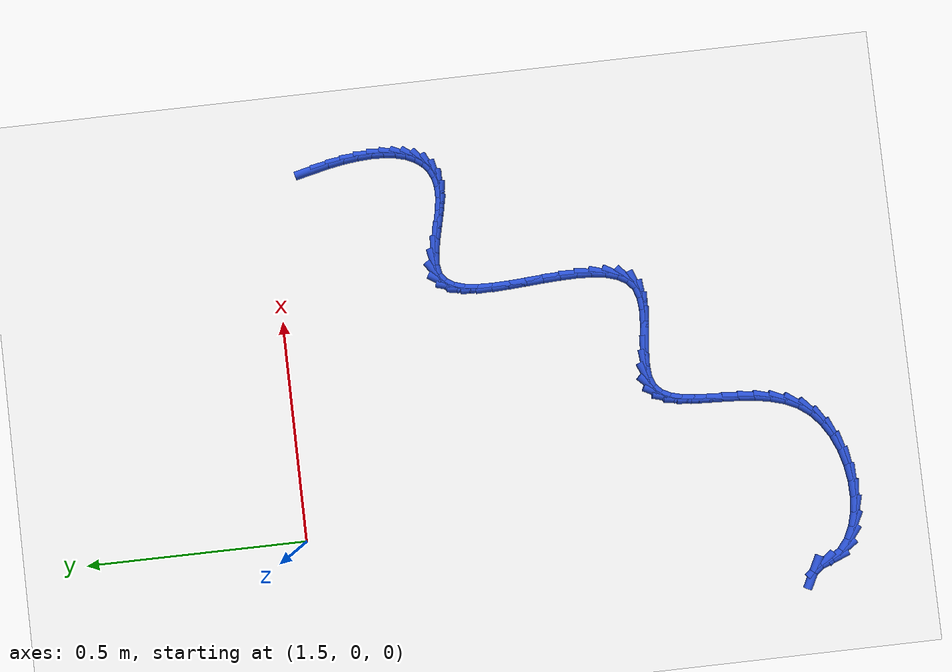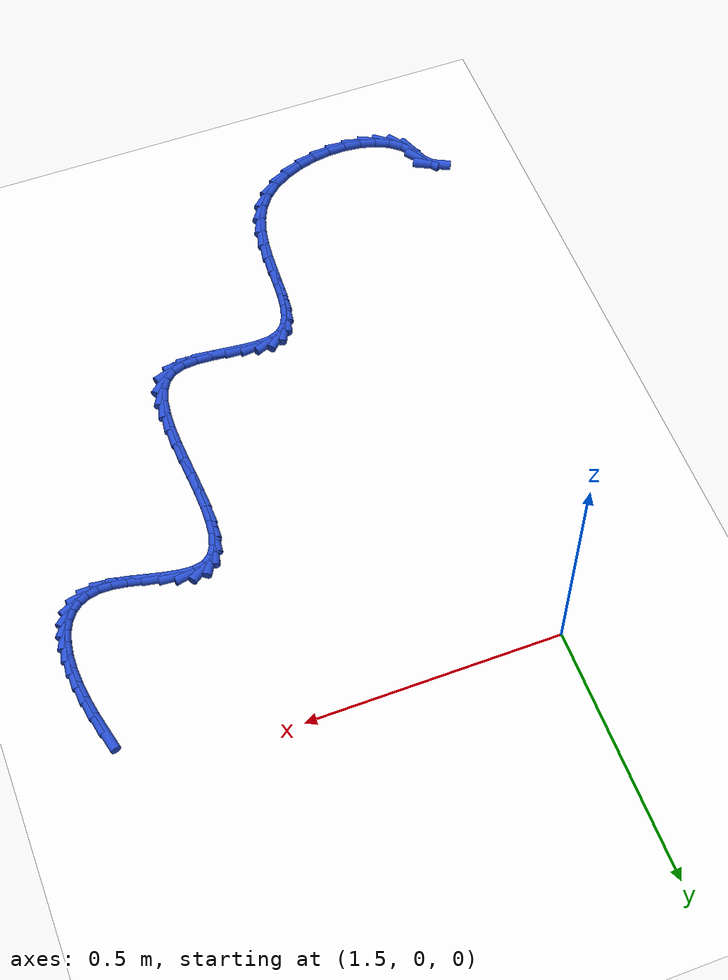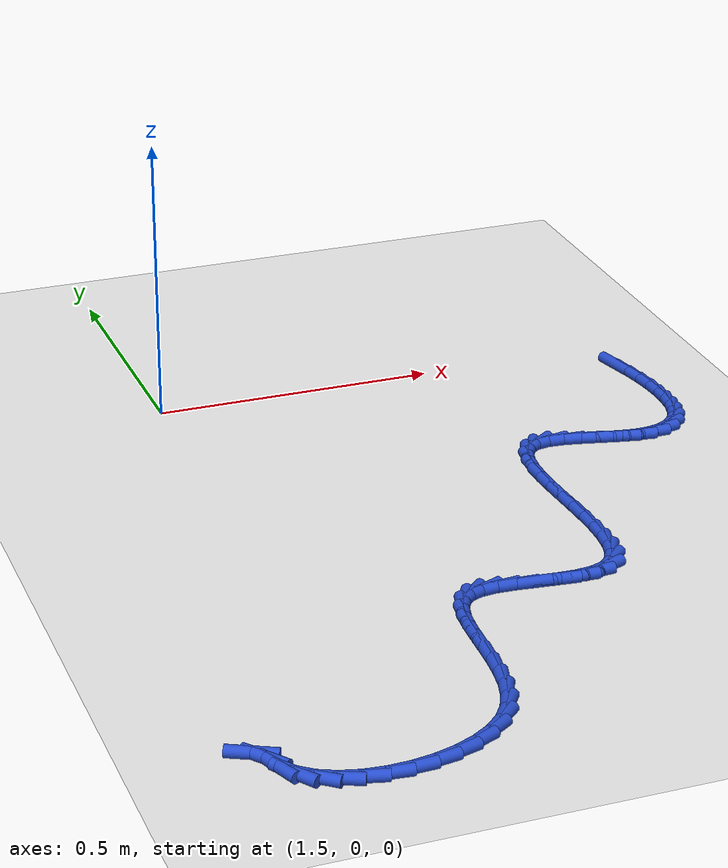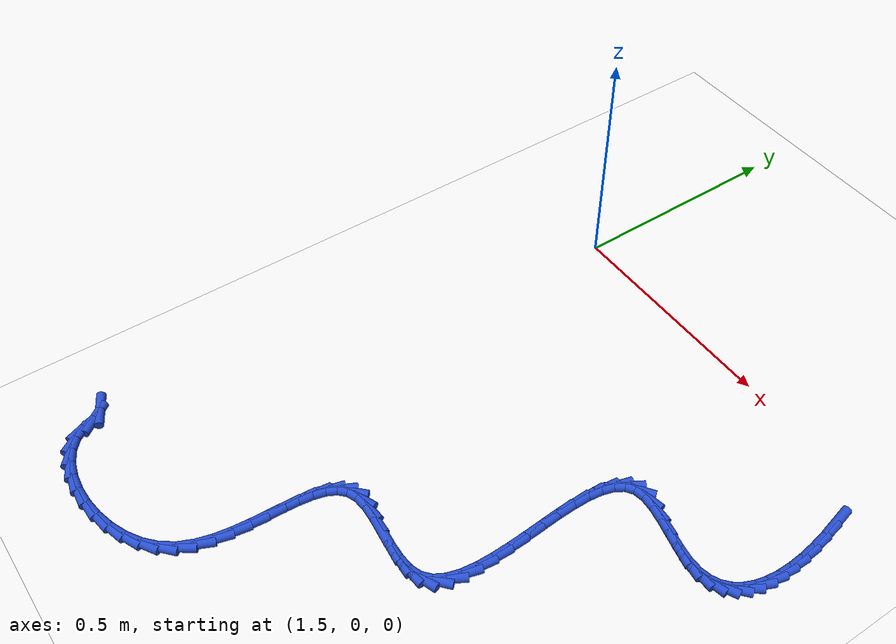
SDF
<sdf version="1.6">
 <world name="default">
  <model name="ground_plane">
   <static>1</static>
   <link name="link">
    <collision name="collision">
     <geometry><plane><normal>0 0 1</normal><size>100 100</size></plane></geometry>
     <surface><friction><ode><mu>100</mu><mu2>50</mu2></ode></friction></surface>
    </collision>
    <visual name="visual">
     <cast_shadows>0</cast_shadows>
     <geometry><plane><normal>0 0 1</normal><size>100 100</size></plane></geometry>
     <material>
      <script><uri>file://media/materials/scripts/gazebo.material</uri><name>Gazebo/WhiteGlow</name></script>
     </material>
    </visual>
   </link>
  </model>
  <model name="line">
   <link name="link_131">
    <pose>2.3375951567566684 -0.1026733432982544 0.01 0 1.57 -1.3455526820320813</pose>
    <collision name="collision">
     <geometry><cylinder><radius>0.01</radius><length>0.08</length></cylinder></geometry>
    </collision>
    <visual name="visual">
     <material>
      <script><name>Gazebo/Blue</name><uri>file://media/materials/scripts/gazebo.material</uri></script>
     </material>
     <geometry><cylinder><radius>0.01</radius><length>0.08</length></cylinder></geometry>
    </visual>
   </link>
   <link name="link_132">
    <pose>2.3460475133399448 -0.1395619675119663 0.01 0 1.57 -1.3940162141005086</pose>
    <collision name="collision">
     <geometry><cylinder><radius>0.01</radius><length>0.08</length></cylinder></geometry>
    </collision>
    <visual name="visual">
     <material>
      <script><name>Gazebo/Blue</name><uri>file://media/materials/scripts/gazebo.material</uri></script>
     </material>
     <geometry><cylinder><radius>0.01</radius><length>0.08</length></cylinder></geometry>
    </visual>
   </link>
   <link name="link_133">
    <pose>2.3523832394621547 -0.17502743029856901 0.01 0 1.57 -1.4505257538932241</pose>
    <collision name="collision">
     <geometry><cylinder><radius>0.01</radius><length>0.08</length></cylinder></geometry>
    </collision>
    <visual name="visual">
     <material>
      <script><name>Gazebo/Blue</name><uri>file://media/materials/scripts/gazebo.material</uri></script>
     </material>
     <geometry><cylinder><radius>0.01</radius><length>0.08</length></cylinder></geometry>
    </visual>
   </link>
   <link name="link_134">
    <pose>2.356461099488628 -0.2087695073941012 0.01 0 1.57 -1.5179188224334936</pose>
    <collision name="collision">
     <geometry><cylinder><radius>0.01</radius><length>0.08</length></cylinder></geometry>
    </collision>
    <visual name="visual">
     <material>
      <script><name>Gazebo/Blue</name><uri>file://media/materials/scripts/gazebo.material</uri></script>
     </material>
     <geometry><cylinder><radius>0.01</radius><length>0.08</length></cylinder></geometry>
    </visual>
   </link>
   <link name="link_135">
    <pose>2.358139857784694 -0.24048797453460297 0.01 0 1.57 1.541493955000063</pose>
    <collision name="collision">
     <geometry><cylinder><radius>0.01</radius><length>0.08</length></cylinder></geometry>
    </collision>
    <visual name="visual">
     <material>
      <script><name>Gazebo/Blue</name><uri>file://media/materials/scripts/gazebo.material</uri></script>
     </material>
     <geometry><cylinder><radius>0.01</radius><length>0.08</length></cylinder></geometry>
    </visual>
   </link>
   <link name="link_136">
    <pose>2.3572782787156825 -0.2698826074561134 0.01 0 1.57 1.4392086330382112</pose>
    <collision name="collision">
     <geometry><cylinder><radius>0.01</radius><length>0.08</length></cylinder></geometry>
    </collision>
    <visual name="visual">
     <material>
      <script><name>Gazebo/Blue</name><uri>file://media/materials/scripts/gazebo.material</uri></script>
     </material>
     <geometry><cylinder><radius>0.01</radius><length>0.08</length></cylinder></geometry>
    </visual>
   </link>
   <link name="link_137">
    <pose>2.353735126646923 -0.2966531818946703 0.01 0 1.57 1.3099218704706403</pose>
    <collision name="collision">
     <geometry><cylinder><radius>0.01</radius><length>0.08</length></cylinder></geometry>
    </collision>
    <visual name="visual">
     <material>
      <script><name>Gazebo/Blue</name><uri>file://media/materials/scripts/gazebo.material</uri></script>
     </material>
     <geometry><cylinder><radius>0.01</radius><length>0.08</length></cylinder></geometry>
    </visual>
   </link>
   <link name="link_138">
    <pose>2.347369165943745 -0.3204994735863144 0.01 0 1.57 1.1459197891736546</pose>
    <collision name="collision">
     <geometry><cylinder><radius>0.01</radius><length>0.08</length></cylinder></geometry>
    </collision>
    <visual name="visual">
     <material>
      <script><name>Gazebo/Blue</name><uri>file://media/materials/scripts/gazebo.material</uri></script>
     </material>
     <geometry><cylinder><radius>0.01</radius><length>0.08</length></cylinder></geometry>
    </visual>
   </link>
   <link name="link_139">
    <pose>2.3380391609714772 -0.3411212582670833 0.01 0 1.57 0.9419593295665475</pose>
    <collision name="collision">
     <geometry><cylinder><radius>0.01</radius><length>0.08</length></cylinder></geometry>
    </collision>
    <visual name="visual">
     <material>
      <script><name>Gazebo/Blue</name><uri>file://media/materials/scripts/gazebo.material</uri></script>
     </material>
     <geometry><cylinder><radius>0.01</radius><length>0.08</length></cylinder></geometry>
    </visual>
   </link>
   <link name="link_140">
    <pose>2.3256038760954505 -0.358218311673017 0.01 0 1.57 0.7023640260336117</pose>
    <collision name="collision">
     <geometry><cylinder><radius>0.01</radius><length>0.08</length></cylinder></geometry>
    </collision>
    <visual name="visual">
     <material>
      <script><name>Gazebo/Blue</name><uri>file://media/materials/scripts/gazebo.material</uri></script>
     </material>
     <geometry><cylinder><radius>0.01</radius><length>0.08</length></cylinder></geometry>
    </visual>
   </link>
   <link name="link_141">
    <pose>2.3099220756809924 -0.371490409540155 0.01 0 1.57 0.4472443282020915</pose>
    <collision name="collision">
     <geometry><cylinder><radius>0.01</radius><length>0.08</length></cylinder></geometry>
    </collision>
    <visual name="visual">
     <material>
      <script><name>Gazebo/Blue</name><uri>file://media/materials/scripts/gazebo.material</uri></script>
     </material>
     <geometry><cylinder><radius>0.01</radius><length>0.08</length></cylinder></geometry>
    </visual>
   </link>
   <link name="link_142">
    <pose>2.2908525240934337 -0.38063732760453545 0.01 0 1.57 0.20596722604905607</pose>
    <collision name="collision">
     <geometry><cylinder><radius>0.01</radius><length>0.08</length></cylinder></geometry>
    </collision>
    <visual name="visual">
     <material>
      <script><name>Gazebo/Blue</name><uri>file://media/materials/scripts/gazebo.material</uri></script>
     </material>
     <geometry><cylinder><radius>0.01</radius><length>0.08</length></cylinder></geometry>
    </visual>
   </link>
   <link name="link_143">
    <pose>2.2682539856981023 -0.3853588416021981 0.01 0 1.57 -0.00015481921336579784</pose>
    <collision name="collision">
     <geometry><cylinder><radius>0.01</radius><length>0.08</length></cylinder></geometry>
    </collision>
    <visual name="visual">
     <material>
      <script><name>Gazebo/Blue</name><uri>file://media/materials/scripts/gazebo.material</uri></script>
     </material>
     <geometry><cylinder><radius>0.01</radius><length>0.08</length></cylinder></geometry>
    </visual>
   </link>
   <link name="link_144">
    <pose>2.2419852592645513 -0.385354774698603 0.01 0 1.57 -0.15167326856820715</pose>
    <collision name="collision">
     <geometry><cylinder><radius>0.01</radius><length>0.08</length></cylinder></geometry>
    </collision>
    <visual name="visual">
     <material>
      <script><name>Gazebo/Blue</name><uri>file://media/materials/scripts/gazebo.material</uri></script>
     </material>
     <geometry><cylinder><radius>0.01</radius><length>0.08</length></cylinder></geometry>
    </visual>
   </link>
   <link name="link_145">
    <pose>2.2122577165739554 -0.3808110047683187 0.01 0 1.57 -0.22341381243508324</pose>
    <collision name="collision">
     <geometry><cylinder><radius>0.01</radius><length>0.08</length></cylinder></geometry>
    </collision>
    <visual name="visual">
     <material>
      <script><name>Gazebo/Blue</name><uri>file://media/materials/scripts/gazebo.material</uri></script>
     </material>
     <geometry><cylinder><radius>0.01</radius><length>0.08</length></cylinder></geometry>
    </visual>
   </link>
   <link name="link_146">
    <pose>2.1805033945334347 -0.37359621016452826 0.01 0 1.57 -0.23415329597388687</pose>
    <collision name="collision">
     <geometry><cylinder><radius>0.01</radius><length>0.08</length></cylinder></geometry>
    </collision>
    <visual name="visual">
     <material>
      <script><name>Gazebo/Blue</name><uri>file://media/materials/scripts/gazebo.material</uri></script>
     </material>
     <geometry><cylinder><radius>0.01</radius><length>0.08</length></cylinder></geometry>
    </visual>
   </link>
   <link name="link_147">
    <pose>2.148418317251118 -0.36594300016525844 0.01 0 1.57 -0.18846098521706348</pose>
    <collision name="collision">
     <geometry><cylinder><radius>0.01</radius><length>0.08</length></cylinder></geometry>
    </collision>
    <visual name="visual">
     <material>
      <script><name>Gazebo/Blue</name><uri>file://media/materials/scripts/gazebo.material</uri></script>
     </material>
     <geometry><cylinder><radius>0.01</radius><length>0.08</length></cylinder></geometry>
    </visual>
   </link>
   <link name="link_148">
    <pose>2.1176985088351383 -0.36008398404853603 0.01 0 1.57 -0.06614743686200249</pose>
    <collision name="collision">
     <geometry><cylinder><radius>0.01</radius><length>0.08</length></cylinder></geometry>
    </collision>
    <visual name="visual">
     <material>
      <script><name>Gazebo/Blue</name><uri>file://media/materials/scripts/gazebo.material</uri></script>
     </material>
     <geometry><cylinder><radius>0.01</radius><length>0.08</length></cylinder></geometry>
    </visual>
   </link>
   <link name="link_149">
    <pose>2.0900399933936233 -0.3582517710923874 0.01 0 1.57 0.19087646037112407</pose>
    <collision name="collision">
     <geometry><cylinder><radius>0.01</radius><length>0.08</length></cylinder></geometry>
    </collision>
    <visual name="visual">
     <material>
      <script><name>Gazebo/Blue</name><uri>file://media/materials/scripts/gazebo.material</uri></script>
     </material>
     <geometry><cylinder><radius>0.01</radius><length>0.08</length></cylinder></geometry>
    </visual>
   </link>
   <link name="link_150">
    <pose>2.0671374364139994 -0.36267720627375744 0.01 0 1.57 0.6162295050546202</pose>
    <collision name="collision">
     <geometry><cylinder><radius>0.01</radius><length>0.08</length></cylinder></geometry>
    </collision>
    <visual name="visual">
     <material>
      <script><name>Gazebo/Blue</name><uri>file://media/materials/scripts/gazebo.material</uri></script>
     </material>
     <geometry><cylinder><radius>0.01</radius><length>0.08</length></cylinder></geometry>
    </visual>
   </link>
   <link name="link_151">
    <pose>2.0500565801029125 -0.37477441654053023 0.01 0 1.57 1.015972883739013</pose>
    <collision name="collision">
     <geometry><cylinder><radius>0.01</radius><length>0.08</length></cylinder></geometry>
    </collision>
    <visual name="visual">
     <material>
      <script><name>Gazebo/Blue</name><uri>file://media/materials/scripts/gazebo.material</uri></script>
     </material>
     <geometry><cylinder><radius>0.01</radius><length>0.08</length></cylinder></geometry>
    </visual>
   </link>
   <link name="link_152">
    <pose>2.0382369305959958 -0.3938457031866605 0.01 0 1.57 1.283929796952998</pose>
    <collision name="collision">
     <geometry><cylinder><radius>0.01</radius><length>0.08</length></cylinder></geometry>
    </collision>
    <visual name="visual">
     <material>
      <script><name>Gazebo/Blue</name><uri>file://media/materials/scripts/gazebo.material</uri></script>
     </material>
     <geometry><cylinder><radius>0.01</radius><length>0.08</length></cylinder></geometry>
    </visual>
   </link>
   <link name="link_153">
    <pose>2.030858638627514 -0.418856569300807 0.01 0 1.57 1.4458723080909175</pose>
    <collision name="collision">
     <geometry><cylinder><radius>0.01</radius><length>0.08</length></cylinder></geometry>
    </collision>
    <visual name="visual">
     <material>
      <script><name>Gazebo/Blue</name><uri>file://media/materials/scripts/gazebo.material</uri></script>
     </material>
     <geometry><cylinder><radius>0.01</radius><length>0.08</length></cylinder></geometry>
    </visual>
   </link>
   <link name="link_154">
    <pose>2.0271018549317303 -0.44877251797163126 0.01 0 1.57 1.5425344645436385</pose>
    <collision name="collision">
     <geometry><cylinder><radius>0.01</radius><length>0.08</length></cylinder></geometry>
    </collision>
    <visual name="visual">
     <material>
      <script><name>Gazebo/Blue</name><uri>file://media/materials/scripts/gazebo.material</uri></script>
     </material>
     <geometry><cylinder><radius>0.01</radius><length>0.08</length></cylinder></geometry>
    </visual>
   </link>
   <link name="link_155">
    <pose>2.026146730242907 -0.4825590522877909 0.01 0 1.57 -1.5427694917056824</pose>
    <collision name="collision">
     <geometry><cylinder><radius>0.01</radius><length>0.08</length></cylinder></geometry>
    </collision>
    <visual name="visual">
     <material>
      <script><name>Gazebo/Blue</name><uri>file://media/materials/scripts/gazebo.material</uri></script>
     </material>
     <geometry><cylinder><radius>0.01</radius><length>0.08</length></cylinder></geometry>
    </visual>
   </link>
   <link name="link_156">
    <pose>2.0271734152953087 -0.5191816753379485 0.01 0 1.57 -1.513897749951895</pose>
    <collision name="collision">
     <geometry><cylinder><radius>0.01</radius><length>0.08</length></cylinder></geometry>
    </collision>
    <visual name="visual">
     <material>
      <script><name>Gazebo/Blue</name><uri>file://media/materials/scripts/gazebo.material</uri></script>
     </material>
     <geometry><cylinder><radius>0.01</radius><length>0.08</length></cylinder></geometry>
    </visual>
   </link>
   <link name="link_157">
    <pose>2.0293620608231984 -0.5576058902107612 0.01 0 1.57 -1.5063114219953675</pose>
    <collision name="collision">
     <geometry><cylinder><radius>0.01</radius><length>0.08</length></cylinder></geometry>
    </collision>
    <visual name="visual">
     <material>
      <script><name>Gazebo/Blue</name><uri>file://media/materials/scripts/gazebo.material</uri></script>
     </material>
     <geometry><cylinder><radius>0.01</radius><length>0.08</length></cylinder></geometry>
    </visual>
   </link>
   <link name="link_158">
    <pose>2.0318928175608386 -0.5967971999948912 0.01 0 1.57 -1.518100743137935</pose>
    <collision name="collision">
     <geometry><cylinder><radius>0.01</radius><length>0.08</length></cylinder></geometry>
    </collision>
    <visual name="visual">
     <material>
      <script><name>Gazebo/Blue</name><uri>file://media/materials/scripts/gazebo.material</uri></script>
     </material>
     <geometry><cylinder><radius>0.01</radius><length>0.08</length></cylinder></geometry>
    </visual>
   </link>
   <link name="link_159">
    <pose>2.033945836242493 -0.6357211077789963 0.01 0 1.57 -1.5507195185508766</pose>
    <collision name="collision">
     <geometry><cylinder><radius>0.01</radius><length>0.08</length></cylinder></geometry>
    </collision>
    <visual name="visual">
     <material>
      <script><name>Gazebo/Blue</name><uri>file://media/materials/scripts/gazebo.material</uri></script>
     </material>
     <geometry><cylinder><radius>0.01</radius><length>0.08</length></cylinder></geometry>
    </visual>
   </link>
   <link name="link_160">
    <pose>2.034701267602425 -0.6733431166517374 0.01 0 1.57 1.5322160304992645</pose>
    <collision name="collision">
     <geometry><cylinder><radius>0.01</radius><length>0.08</length></cylinder></geometry>
    </collision>
    <visual name="visual">
     <material>
      <script><name>Gazebo/Blue</name><uri>file://media/materials/scripts/gazebo.material</uri></script>
     </material>
     <geometry><cylinder><radius>0.01</radius><length>0.08</length></cylinder></geometry>
    </visual>
   </link>
   <link name="link_161">
    <pose>2.033339262374899 -0.7086287297017755 0.01 0 1.57 1.4368906001173172</pose>
    <collision name="collision">
     <geometry><cylinder><radius>0.01</radius><length>0.08</length></cylinder></geometry>
    </collision>
    <visual name="visual">
     <material>
      <script><name>Gazebo/Blue</name><uri>file://media/materials/scripts/gazebo.material</uri></script>
     </material>
     <geometry><cylinder><radius>0.01</radius><length>0.08</length></cylinder></geometry>
    </visual>
   </link>
   <link name="link_162">
    <pose>2.0290399712941767 -0.7405434500177683 0.01 0 1.57 1.2859013343175598</pose>
    <collision name="collision">
     <geometry><cylinder><radius>0.01</radius><length>0.08</length></cylinder></geometry>
    </collision>
    <visual name="visual">
     <material>
      <script><name>Gazebo/Blue</name><uri>file://media/materials/scripts/gazebo.material</uri></script>
     </material>
     <geometry><cylinder><radius>0.01</radius><length>0.08</length></cylinder></geometry>
    </visual>
   </link>
   <link name="link_163">
    <pose>2.0209835450945226 -0.7680527806883779 0.01 0 1.57 1.050888834175305</pose>
    <collision name="collision">
     <geometry><cylinder><radius>0.01</radius><length>0.08</length></cylinder></geometry>
    </collision>
    <visual name="visual">
     <material>
      <script><name>Gazebo/Blue</name><uri>file://media/materials/scripts/gazebo.material</uri></script>
     </material>
     <geometry><cylinder><radius>0.01</radius><length>0.08</length></cylinder></geometry>
    </visual>
   </link>
   <link name="link_164">
    <pose>2.008350134510199 -0.7901222248022619 0.01 0 1.57 0.7131032184170614</pose>
    <collision name="collision">
     <geometry><cylinder><radius>0.01</radius><length>0.08</length></cylinder></geometry>
    </collision>
    <visual name="visual">
     <material>
      <script><name>Gazebo/Blue</name><uri>file://media/materials/scripts/gazebo.material</uri></script>
     </material>
     <geometry><cylinder><radius>0.01</radius><length>0.08</length></cylinder></geometry>
    </visual>
   </link>
   <link name="link_165">
    <pose>1.99031989027547 -0.8057172854480821 0.01 0 1.57 0.3358237771870635</pose>
    <collision name="collision">
     <geometry><cylinder><radius>0.01</radius><length>0.08</length></cylinder></geometry>
    </collision>
    <visual name="visual">
     <material>
      <script><name>Gazebo/Blue</name><uri>file://media/materials/scripts/gazebo.material</uri></script>
     </material>
     <geometry><cylinder><radius>0.01</radius><length>0.08</length></cylinder></geometry>
    </visual>
   </link>
   <link name="link_166">
    <pose>1.9663195173549197 -0.8140944953588757 0.01 0 1.57 0.08176600731448054</pose>
    <collision name="collision">
     <geometry><cylinder><radius>0.01</radius><length>0.08</length></cylinder></geometry>
    </collision>
    <visual name="visual">
     <material>
      <script><name>Gazebo/Blue</name><uri>file://media/materials/scripts/gazebo.material</uri></script>
     </material>
     <geometry><cylinder><radius>0.01</radius><length>0.08</length></cylinder></geometry>
    </visual>
   </link>
   <link name="link_167">
    <pose>1.9374291092763847 -0.8164620272170617 0.01 0 1.57 -0.05090914730709811</pose>
    <collision name="collision">
     <geometry><cylinder><radius>0.01</radius><length>0.08</length></cylinder></geometry>
    </collision>
    <visual name="visual">
     <material>
      <script><name>Gazebo/Blue</name><uri>file://media/materials/scripts/gazebo.material</uri></script>
     </material>
     <geometry><cylinder><radius>0.01</radius><length>0.08</length></cylinder></geometry>
    </visual>
   </link>
   <link name="link_168">
    <pose>1.9054085570314756 -0.8148304784449365 0.01 0 1.57 -0.10792584558444832</pose>
    <collision name="collision">
     <geometry><cylinder><radius>0.01</radius><length>0.08</length></cylinder></geometry>
    </collision>
    <visual name="visual">
     <material>
      <script><name>Gazebo/Blue</name><uri>file://media/materials/scripts/gazebo.material</uri></script>
     </material>
     <geometry><cylinder><radius>0.01</radius><length>0.08</length></cylinder></geometry>
    </visual>
   </link>
   <link name="link_169">
    <pose>1.872019844347057 -0.811212916704292 0.01 0 1.57 -0.10839358040724058</pose>
    <collision name="collision">
     <geometry><cylinder><radius>0.01</radius><length>0.08</length></cylinder></geometry>
    </collision>
    <visual name="visual">
     <material>
      <script><name>Gazebo/Blue</name><uri>file://media/materials/scripts/gazebo.material</uri></script>
     </material>
     <geometry><cylinder><radius>0.01</radius><length>0.08</length></cylinder></geometry>
    </visual>
   </link>
   <link name="link_170">
    <pose>1.839024954949998 -0.8076224096569201 0.01 0 1.57 -0.050231083291591365</pose>
    <collision name="collision">
     <geometry><cylinder><radius>0.01</radius><length>0.08</length></cylinder></geometry>
    </collision>
    <visual name="visual">
     <material>
      <script><name>Gazebo/Blue</name><uri>file://media/materials/scripts/gazebo.material</uri></script>
     </material>
     <geometry><cylinder><radius>0.01</radius><length>0.08</length></cylinder></geometry>
    </visual>
   </link>
   <link name="link_171">
    <pose>1.808185872567162 -0.8060720249646125 0.01 0 1.57 0.09270104772141038</pose>
    <collision name="collision">
     <geometry><cylinder><radius>0.01</radius><length>0.08</length></cylinder></geometry>
    </collision>
    <visual name="visual">
     <material>
      <script><name>Gazebo/Blue</name><uri>file://media/materials/scripts/gazebo.material</uri></script>
     </material>
     <geometry><cylinder><radius>0.01</radius><length>0.08</length></cylinder></geometry>
    </visual>
   </link>
   <link name="link_172">
    <pose>1.7812645809254144 -0.8085748302891607 0.01 0 1.57 0.3791793260894001</pose>
    <collision name="collision">
     <geometry><cylinder><radius>0.01</radius><length>0.08</length></cylinder></geometry>
    </collision>
    <visual name="visual">
     <material>
      <script><name>Gazebo/Blue</name><uri>file://media/materials/scripts/gazebo.material</uri></script>
     </material>
     <geometry><cylinder><radius>0.01</radius><length>0.08</length></cylinder></geometry>
    </visual>
   </link>
   <link name="link_173">
    <pose>1.7599497488342548 -0.8170679689053272 0.01 0 1.57 0.7695700981051051</pose>
    <collision name="collision">
     <geometry><cylinder><radius>0.01</radius><length>0.08</length></cylinder></geometry>
    </collision>
    <visual name="visual">
     <material>
      <script><name>Gazebo/Blue</name><uri>file://media/materials/scripts/gazebo.material</uri></script>
     </material>
     <geometry><cylinder><radius>0.01</radius><length>0.08</length></cylinder></geometry>
    </visual>
   </link>
   <link name="link_174">
    <pose>1.7445142581932083 -0.832022405618868 0.01 0 1.57 1.0962056085802305</pose>
    <collision name="collision">
     <geometry><cylinder><radius>0.01</radius><length>0.08</length></cylinder></geometry>
    </collision>
    <visual name="visual">
     <material>
      <script><name>Gazebo/Blue</name><uri>file://media/materials/scripts/gazebo.material</uri></script>
     </material>
     <geometry><cylinder><radius>0.01</radius><length>0.08</length></cylinder></geometry>
    </visual>
   </link>
   <link name="link_175">
    <pose>1.7339509155316684 -0.8525834686350152 0.01 0 1.57 1.309932944470564</pose>
    <collision name="collision">
     <geometry><cylinder><radius>0.01</radius><length>0.08</length></cylinder></geometry>
    </collision>
    <visual name="visual">
     <material>
      <script><name>Gazebo/Blue</name><uri>file://media/materials/scripts/gazebo.material</uri></script>
     </material>
     <geometry><cylinder><radius>0.01</radius><length>0.08</length></cylinder></geometry>
    </visual>
   </link>
   <link name="link_176">
    <pose>1.7272064411938979 -0.8778487596460086 0.01 0 1.57 1.4347556932783219</pose>
    <collision name="collision">
     <geometry><cylinder><radius>0.01</radius><length>0.08</length></cylinder></geometry>
    </collision>
    <visual name="visual">
     <material>
      <script><name>Gazebo/Blue</name><uri>file://media/materials/scripts/gazebo.material</uri></script>
     </material>
     <geometry><cylinder><radius>0.01</radius><length>0.08</length></cylinder></geometry>
    </visual>
   </link>
   <link name="link_177">
    <pose>1.7232275555241594 -0.9069158803440855 0.01 0 1.57 1.500010159775691</pose>
    <collision name="collision">
     <geometry><cylinder><radius>0.01</radius><length>0.08</length></cylinder></geometry>
    </collision>
    <visual name="visual">
     <material>
      <script><name>Gazebo/Blue</name><uri>file://media/materials/scripts/gazebo.material</uri></script>
     </material>
     <geometry><cylinder><radius>0.01</radius><length>0.08</length></cylinder></geometry>
    </visual>
   </link>
   <link name="link_178">
    <pose>1.7209609788667173 -0.9388824324214867 0.01 0 1.57 1.5235001282955773</pose>
    <collision name="collision">
     <geometry><cylinder><radius>0.01</radius><length>0.08</length></cylinder></geometry>
    </collision>
    <visual name="visual">
     <material>
      <script><name>Gazebo/Blue</name><uri>file://media/materials/scripts/gazebo.material</uri></script>
     </material>
     <geometry><cylinder><radius>0.01</radius><length>0.08</length></cylinder></geometry>
    </visual>
   </link>
   <link name="link_179">
    <pose>1.719353431565833 -0.9728460175704481 0.01 0 1.57 1.5137590228841487</pose>
    <collision name="collision">
     <geometry><cylinder><radius>0.01</radius><length>0.08</length></cylinder></geometry>
    </collision>
    <visual name="visual">
     <material>
      <script><name>Gazebo/Blue</name><uri>file://media/materials/scripts/gazebo.material</uri></script>
     </material>
     <geometry><cylinder><radius>0.01</radius><length>0.08</length></cylinder></geometry>
    </visual>
   </link>
   <link name="link_180">
    <pose>1.7173516339657704 -1.0079042374832108 0.01 0 1.57 1.4732548590194738</pose>
    <collision name="collision">
     <geometry><cylinder><radius>0.01</radius><length>0.08</length></cylinder></geometry>
    </collision>
    <visual name="visual">
     <material>
      <script><name>Gazebo/Blue</name><uri>file://media/materials/scripts/gazebo.material</uri></script>
     </material>
     <geometry><cylinder><radius>0.01</radius><length>0.08</length></cylinder></geometry>
    </visual>
   </link>
   <link name="link_181">
    <pose>1.7139023064107923 -1.0431546938520113 0.01 0 1.57 1.400204117095476</pose>
    <collision name="collision">
     <geometry><cylinder><radius>0.01</radius><length>0.08</length></cylinder></geometry>
    </collision>
    <visual name="visual">
     <material>
      <script><name>Gazebo/Blue</name><uri>file://media/materials/scripts/gazebo.material</uri></script>
     </material>
     <geometry><cylinder><radius>0.01</radius><length>0.08</length></cylinder></geometry>
    </visual>
   </link>
   <link name="link_182">
    <pose>1.7079521692451616 -1.0776949883690896 0.01 0 1.57 1.2897948334740648</pose>
    <collision name="collision">
     <geometry><cylinder><radius>0.01</radius><length>0.08</length></cylinder></geometry>
    </collision>
    <visual name="visual">
     <material>
      <script><name>Gazebo/Blue</name><uri>file://media/materials/scripts/gazebo.material</uri></script>
     </material>
     <geometry><cylinder><radius>0.01</radius><length>0.08</length></cylinder></geometry>
    </visual>
   </link>
   <link name="link_183">
    <pose>1.6984479428131414 -1.110622722726685 0.01 0 1.57 1.1363593625439172</pose>
    <collision name="collision">
     <geometry><cylinder><radius>0.01</radius><length>0.08</length></cylinder></geometry>
    </collision>
    <visual name="visual">
     <material>
      <script><name>Gazebo/Blue</name><uri>file://media/materials/scripts/gazebo.material</uri></script>
     </material>
     <geometry><cylinder><radius>0.01</radius><length>0.08</length></cylinder></geometry>
    </visual>
   </link>
   <link name="link_184">
    <pose>1.684336347458995 -1.1410354986170343 0.01 0 1.57 0.9389194436743866</pose>
    <collision name="collision">
     <geometry><cylinder><radius>0.01</radius><length>0.08</length></cylinder></geometry>
    </collision>
    <visual name="visual">
     <material>
      <script><name>Gazebo/Blue</name><uri>file://media/materials/scripts/gazebo.material</uri></script>
     </material>
     <geometry><cylinder><radius>0.01</radius><length>0.08</length></cylinder></geometry>
    </visual>
   </link>
   <link name="link_185">
    <pose>1.6645735159739818 -1.1680341486067392 0.01 0 1.57 0.7297798397037222</pose>
    <collision name="collision">
     <geometry><cylinder><radius>0.01</radius><length>0.08</length></cylinder></geometry>
    </collision>
    <visual name="visual">
     <material>
      <script><name>Gazebo/Blue</name><uri>file://media/materials/scripts/gazebo.material</uri></script>
     </material>
     <geometry><cylinder><radius>0.01</radius><length>0.08</length></cylinder></geometry>
    </visual>
   </link>
   <link name="link_186">
    <pose>1.638908797754016 -1.1909917812381605 0.01 0 1.57 0.5524986235045752</pose>
    <collision name="collision">
     <geometry><cylinder><radius>0.01</radius><length>0.08</length></cylinder></geometry>
    </collision>
    <visual name="visual">
     <material>
      <script><name>Gazebo/Blue</name><uri>file://media/materials/scripts/gazebo.material</uri></script>
     </material>
     <geometry><cylinder><radius>0.01</radius><length>0.08</length></cylinder></geometry>
    </visual>
   </link>
   <link name="link_187">
    <pose>1.6084742751981989 -1.2097561357856168 0.01 0 1.57 0.40298805689408446</pose>
    <collision name="collision">
     <geometry><cylinder><radius>0.01</radius><length>0.08</length></cylinder></geometry>
    </collision>
    <visual name="visual">
     <material>
      <script><name>Gazebo/Blue</name><uri>file://media/materials/scripts/gazebo.material</uri></script>
     </material>
     <geometry><cylinder><radius>0.01</radius><length>0.08</length></cylinder></geometry>
    </visual>
   </link>
   <link name="link_188">
    <pose>1.5745408852857077 -1.224222614124102 0.01 0 1.57 0.27143951845743186</pose>
    <collision name="collision">
     <geometry><cylinder><radius>0.01</radius><length>0.08</length></cylinder></geometry>
    </collision>
    <visual name="visual">
     <material>
      <script><name>Gazebo/Blue</name><uri>file://media/materials/scripts/gazebo.material</uri></script>
     </material>
     <geometry><cylinder><radius>0.01</radius><length>0.08</length></cylinder></geometry>
    </visual>
   </link>
   <link name="link_189">
    <pose>1.5383795649957177 -1.234286618128612 0.01 0 1.57 0.1486049679194594</pose>
    <collision name="collision">
     <geometry><cylinder><radius>0.01</radius><length>0.08</length></cylinder></geometry>
    </collision>
    <visual name="visual">
     <material>
      <script><name>Gazebo/Blue</name><uri>file://media/materials/scripts/gazebo.material</uri></script>
     </material>
     <geometry><cylinder><radius>0.01</radius><length>0.08</length></cylinder></geometry>
    </visual>
   </link>
   <link name="link_190">
    <pose>1.501261251307406 -1.239843549674142 0.01 0 1.57 0.025677744195464813</pose>
    <collision name="collision">
     <geometry><cylinder><radius>0.01</radius><length>0.08</length></cylinder></geometry>
    </collision>
    <visual name="visual">
     <material>
      <script><name>Gazebo/Blue</name><uri>file://media/materials/scripts/gazebo.material</uri></script>
     </material>
     <geometry><cylinder><radius>0.01</radius><length>0.08</length></cylinder></geometry>
    </visual>
   </link>
   <link name="link_191">
    <pose>1.464456881199947 -1.2407888106356861 0.01 0 1.57 -0.10666524195207731</pose>
    <collision name="collision">
     <geometry><cylinder><radius>0.01</radius><length>0.08</length></cylinder></geometry>
    </collision>
    <visual name="visual">
     <material>
      <script><name>Gazebo/Blue</name><uri>file://media/materials/scripts/gazebo.material</uri></script>
     </material>
     <geometry><cylinder><radius>0.01</radius><length>0.08</length></cylinder></geometry>
    </visual>
   </link>
   <link name="link_192">
    <pose>1.4292373916525187 -1.2370178028882401 0.01 0 1.57 -0.25949322662306096</pose>
    <collision name="collision">
     <geometry><cylinder><radius>0.01</radius><length>0.08</length></cylinder></geometry>
    </collision>
    <visual name="visual">
     <material>
      <script><name>Gazebo/Blue</name><uri>file://media/materials/scripts/gazebo.material</uri></script>
     </material>
     <geometry><cylinder><radius>0.01</radius><length>0.08</length></cylinder></geometry>
    </visual>
   </link>
   <link name="link_193">
    <pose>1.3968737196442964 -1.2284259283067989 0.01 0 1.57 -0.4464722979955555</pose>
    <collision name="collision">
     <geometry><cylinder><radius>0.01</radius><length>0.08</length></cylinder></geometry>
    </collision>
    <visual name="visual">
     <material>
      <script><name>Gazebo/Blue</name><uri>file://media/materials/scripts/gazebo.material</uri></script>
     </material>
     <geometry><cylinder><radius>0.01</radius><length>0.08</length></cylinder></geometry>
    </visual>
   </link>
   <link name="link_194">
    <pose>1.3686368021544546 -1.2149085887663569 0.01 0 1.57 -0.6820667857848763</pose>
    <collision name="collision">
     <geometry><cylinder><radius>0.01</radius><length>0.08</length></cylinder></geometry>
    </collision>
    <visual name="visual">
     <material>
      <script><name>Gazebo/Blue</name><uri>file://media/materials/scripts/gazebo.material</uri></script>
     </material>
     <geometry><cylinder><radius>0.01</radius><length>0.08</length></cylinder></geometry>
    </visual>
   </link>
   <link name="link_195">
    <pose>1.3457975761621719 -1.1963611861419103 0.01 0 1.57 -0.971693551535952</pose>
    <collision name="collision">
     <geometry><cylinder><radius>0.01</radius><length>0.08</length></cylinder></geometry>
    </collision>
    <visual name="visual">
     <material>
      <script><name>Gazebo/Blue</name><uri>file://media/materials/scripts/gazebo.material</uri></script>
     </material>
     <geometry><cylinder><radius>0.01</radius><length>0.08</length></cylinder></geometry>
    </visual>
   </link>
   <link name="link_196">
    <pose>1.3296269786466228 -1.1726791223084527 0.01 0 1.57 -1.1991723587456382</pose>
    <collision name="collision">
     <geometry><cylinder><radius>0.01</radius><length>0.08</length></cylinder></geometry>
    </collision>
    <visual name="visual">
     <material>
      <script><name>Gazebo/Blue</name><uri>file://media/materials/scripts/gazebo.material</uri></script>
     </material>
     <geometry><cylinder><radius>0.01</radius><length>0.08</length></cylinder></geometry>
    </visual>
   </link>
   <link name="link_197">
    <pose>1.3192995741263869 -1.1461804303337537 0.01 0 1.57 -0.919614675083415</pose>
    <collision name="collision">
     <geometry><cylinder><radius>0.01</radius><length>0.08</length></cylinder></geometry>
    </collision>
    <visual name="visual">
     <material>
      <script><name>Gazebo/Blue</name><uri>file://media/materials/scripts/gazebo.material</uri></script>
     </material>
     <geometry><cylinder><radius>0.01</radius><length>0.08</length></cylinder></geometry>
    </visual>
   </link>
   <link name="link_198">
    <pose>1.3055377008145421 -1.1281219026870555 0.01 0 1.57 -0.4676900703364566</pose>
    <collision name="collision">
     <geometry><cylinder><radius>0.01</radius><length>0.08</length></cylinder></geometry>
    </collision>
    <visual name="visual">
     <material>
      <script><name>Gazebo/Blue</name><uri>file://media/materials/scripts/gazebo.material</uri></script>
     </material>
     <geometry><cylinder><radius>0.01</radius><length>0.08</length></cylinder></geometry>
    </visual>
   </link>
  </model>
 </world>
</sdf>
